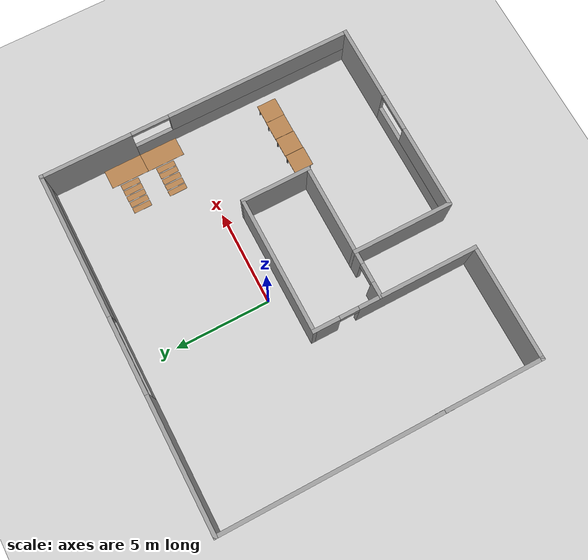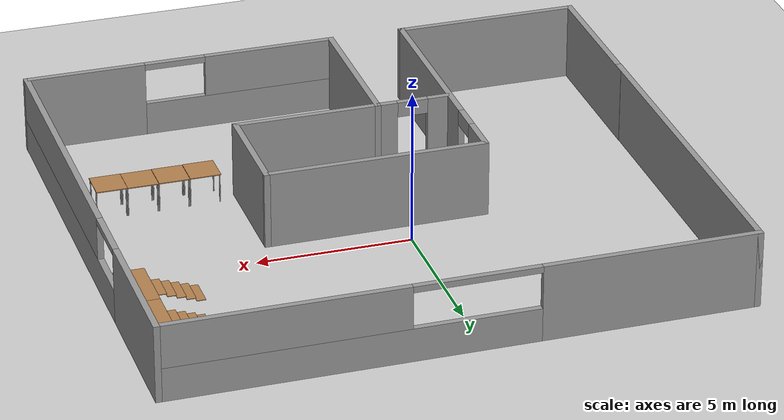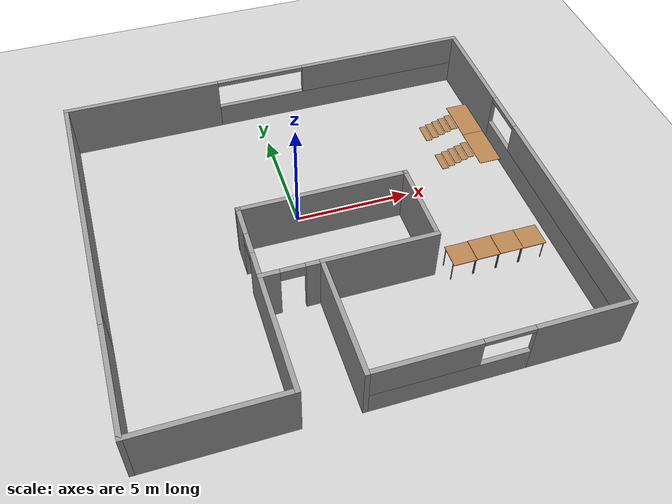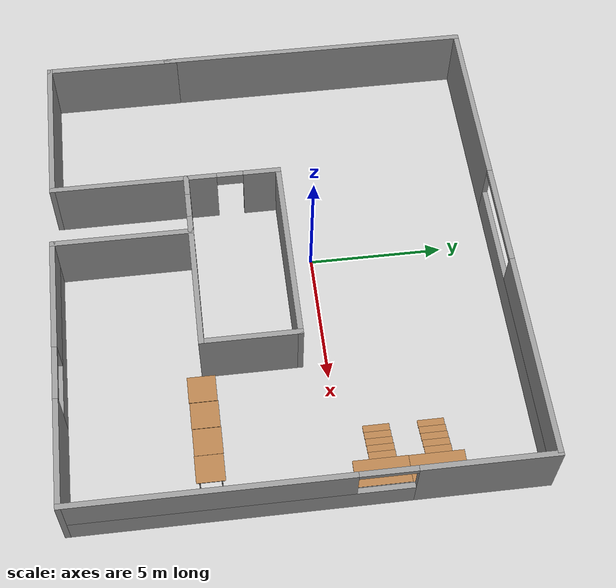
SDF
<sdf version="1.6">
 <world name="default">
  <light name="sun" type="directional">
   <pose>0 0 10 0 -0 0</pose>
   <diffuse>0.8 0.8 0.8 1</diffuse>
   <specular>0.2 0.2 0.2 1</specular>
   <attenuation>
    <range>1000</range>
    <constant>0.9</constant>
    <linear>0.01</linear>
    <quadratic>0.001</quadratic>
   </attenuation>
   <direction>-0.5 0.1 -0.9</direction>
  </light>
  <model name="ground_plane">
   <static>1</static>
   <link name="link">
    <collision name="collision">
     <geometry><plane><normal>0 0 1</normal><size>100 100</size></plane></geometry>
     <surface>
      <contact><collide_bitmask>65535</collide_bitmask></contact>
      <friction><ode><mu>100</mu><mu2>50</mu2></ode></friction>
     </surface>
    </collision>
    <visual name="visual">
     <cast_shadows>0</cast_shadows>
     <geometry><plane><normal>0 0 1</normal><size>100 100</size></plane></geometry>
     <material>
      <script><uri>file://media/materials/scripts/gazebo.material</uri><name>Gazebo/Grey</name></script>
     </material>
    </visual>
   </link>
  </model>
  <gravity>0 0 -9.8</gravity>
  <magnetic_field>6e-06 2.3e-05 -4.2e-05</magnetic_field>
  <atmosphere type="adiabatic"/>
  <physics name="default_physics" default="0" type="ode">
   <max_step_size>0.001</max_step_size>
   <real_time_factor>1</real_time_factor>
   <real_time_update_rate>1000</real_time_update_rate>
  </physics>
  <scene><ambient>0.4 0.4 0.4 1</ambient><background>0.7 0.7 0.7 1</background><shadows>1</shadows></scene>
  <audio><device>default</device></audio>
  <spherical_coordinates>
   <surface_model>EARTH_WGS84</surface_model>
   <latitude_deg>0</latitude_deg>
   <longitude_deg>0</longitude_deg>
   <elevation>0</elevation>
   <heading_deg>0</heading_deg>
  </spherical_coordinates>
  <model name="walls">
   <link name="Wall_0">
    <collision name="Wall_0_Collision">
     <geometry><box><size>11.9993 0.2 2.5</size></box></geometry>
     <pose>0 0 1.25 0 -0 0</pose>
    </collision>
    <visual name="Wall_0_Visual">
     <pose>0 0 1.25 0 -0 0</pose>
     <geometry><box><size>11.9993 0.2 2.5</size></box></geometry>
     <material>
      <script><uri>file://media/materials/scripts/gazebo.material</uri><name>Gazebo/Grey</name></script>
     </material>
    </visual>
    <velocity_decay><linear>0</linear><angular>0</angular></velocity_decay>
    <pose>-3.37 1.79965 0 0 -0 1.5708</pose>
   </link>
   <link name="Wall_1">
    <pose>5.88001 7.6993 0 0 -0 0</pose>
    <visual name="Wall_1_Visual_0">
     <pose>-5.88207 0 1.25 0 -0 0</pose>
     <geometry><box><size>6.93586 0.2 2.5</size></box></geometry>
     <material>
      <script><uri>file://media/materials/scripts/gazebo.material</uri><name>Gazebo/Grey</name></script>
     </material>
    </visual>
    <collision name="Wall_1_Collision_0">
     <geometry><box><size>6.93586 0.2 2.5</size></box></geometry>
     <pose>-5.88207 0 1.25 0 -0 0</pose>
    </collision>
    <visual name="Wall_1_Visual_1">
     <pose>3.46793 0 0.55 0 -0 0</pose>
     <geometry><box><size>11.7641 0.2 1.1</size></box></geometry>
     <material>
      <script><uri>file://media/materials/scripts/gazebo.material</uri><name>Gazebo/Grey</name></script>
     </material>
    </visual>
    <collision name="Wall_1_Collision_1">
     <geometry><box><size>11.7641 0.2 1.1</size></box></geometry>
     <pose>3.46793 0 0.55 0 -0 0</pose>
    </collision>
    <visual name="Wall_1_Visual_2">
     <pose>5.46793 0 1.8 0 -0 0</pose>
     <geometry><box><size>7.76414 0.2 1.4</size></box></geometry>
     <material>
      <script><uri>file://media/materials/scripts/gazebo.material</uri><name>Gazebo/Grey</name></script>
     </material>
    </visual>
    <collision name="Wall_1_Collision_2">
     <geometry><box><size>7.76414 0.2 1.4</size></box></geometry>
     <pose>5.46793 0 1.8 0 -0 0</pose>
    </collision>
    <visual name="Wall_1_Visual_3">
     <pose>-0.414141 0 2.4 0 -0 0</pose>
     <geometry><box><size>4 0.2 0.2</size></box></geometry>
     <material>
      <script><uri>file://media/materials/scripts/gazebo.material</uri><name>Gazebo/Grey</name></script>
     </material>
    </visual>
    <collision name="Wall_1_Collision_3">
     <geometry><box><size>4 0.2 0.2</size></box></geometry>
     <pose>-0.414141 0 2.4 0 -0 0</pose>
    </collision>
    <velocity_decay><linear>0</linear><angular>0</angular></velocity_decay>
   </link>
   <link name="Wall_10">
    <collision name="Wall_10_Collision">
     <geometry><box><size>5.17806 0.2 2.5</size></box></geometry>
     <pose>0 0 1.25 0 -0 0</pose>
    </collision>
    <visual name="Wall_10_Visual">
     <pose>0 0 1.25 0 -0 0</pose>
     <geometry><box><size>5.17806 0.2 2.5</size></box></geometry>
     <material>
      <script><uri>file://media/materials/scripts/gazebo.material</uri><name>Gazebo/Grey</name></script>
     </material>
    </visual>
    <velocity_decay><linear>0</linear><angular>0</angular></velocity_decay>
    <pose>-3.36336 -6.28114 0 0 -0 1.5708</pose>
   </link>
   <link name="Wall_12">
    <pose>3.70438 -3.74874 0 0 -0 3.14159</pose>
    <visual name="Wall_12_Visual_0">
     <pose>-0.931117 0 1.25 0 -0 0</pose>
     <geometry><box><size>0.700965 0.2 2.5</size></box></geometry>
     <material>
      <script><uri>file://media/materials/scripts/gazebo.material</uri><name>Gazebo/Grey</name></script>
     </material>
    </visual>
    <collision name="Wall_12_Collision_0">
     <geometry><box><size>0.700965 0.2 2.5</size></box></geometry>
     <pose>-0.931117 0 1.25 0 -0 0</pose>
    </collision>
    <visual name="Wall_12_Visual_1">
     <pose>0.850483 0 1.25 0 -0 0</pose>
     <geometry><box><size>0.862235 0.2 2.5</size></box></geometry>
     <material>
      <script><uri>file://media/materials/scripts/gazebo.material</uri><name>Gazebo/Grey</name></script>
     </material>
    </visual>
    <collision name="Wall_12_Collision_1">
     <geometry><box><size>0.862235 0.2 2.5</size></box></geometry>
     <pose>0.850483 0 1.25 0 -0 0</pose>
    </collision>
    <visual name="Wall_12_Visual_2">
     <pose>-0.080635 0 2.25 0 -0 0</pose>
     <geometry><box><size>1 0.2 0.5</size></box></geometry>
     <material>
      <script><uri>file://media/materials/scripts/gazebo.material</uri><name>Gazebo/Grey</name></script>
     </material>
    </visual>
    <collision name="Wall_12_Collision_2">
     <geometry><box><size>1 0.2 0.5</size></box></geometry>
     <pose>-0.080635 0 2.25 0 -0 0</pose>
    </collision>
    <velocity_decay><linear>0</linear><angular>0</angular></velocity_decay>
   </link>
   <link name="Wall_2">
    <pose>15.13 -0.5587 0 0 0 -1.5708</pose>
    <visual name="Wall_2_Visual_0">
     <pose>-5.9463 0 1.25 0 -0 0</pose>
     <geometry><box><size>4.82341 0.2 2.5</size></box></geometry>
     <material>
      <script><uri>file://media/materials/scripts/gazebo.material</uri><name>Gazebo/Grey</name></script>
     </material>
    </visual>
    <collision name="Wall_2_Collision_0">
     <geometry><box><size>4.82341 0.2 2.5</size></box></geometry>
     <pose>-5.9463 0 1.25 0 -0 0</pose>
    </collision>
    <visual name="Wall_2_Visual_1">
     <pose>2.4117 0 0.55 0 -0 0</pose>
     <geometry><box><size>11.8926 0.2 1.1</size></box></geometry>
     <material>
      <script><uri>file://media/materials/scripts/gazebo.material</uri><name>Gazebo/Grey</name></script>
     </material>
    </visual>
    <collision name="Wall_2_Collision_1">
     <geometry><box><size>11.8926 0.2 1.1</size></box></geometry>
     <pose>2.4117 0 0.55 0 -0 0</pose>
    </collision>
    <visual name="Wall_2_Visual_2">
     <pose>3.4117 0 1.8 0 -0 0</pose>
     <geometry><box><size>9.89259 0.2 1.4</size></box></geometry>
     <material>
      <script><uri>file://media/materials/scripts/gazebo.material</uri><name>Gazebo/Grey</name></script>
     </material>
    </visual>
    <collision name="Wall_2_Collision_2">
     <geometry><box><size>9.89259 0.2 1.4</size></box></geometry>
     <pose>3.4117 0 1.8 0 -0 0</pose>
    </collision>
    <visual name="Wall_2_Visual_3">
     <pose>-2.53459 0 2.4 0 -0 0</pose>
     <geometry><box><size>2 0.2 0.2</size></box></geometry>
     <material>
      <script><uri>file://media/materials/scripts/gazebo.material</uri><name>Gazebo/Grey</name></script>
     </material>
    </visual>
    <collision name="Wall_2_Collision_3">
     <geometry><box><size>2 0.2 0.2</size></box></geometry>
     <pose>-2.53459 0 2.4 0 -0 0</pose>
    </collision>
    <velocity_decay><linear>0</linear><angular>0</angular></velocity_decay>
   </link>
   <link name="Wall_3">
    <pose>10.0357 -8.81669 0 0 -0 3.14159</pose>
    <visual name="Wall_3_Visual_0">
     <pose>-3.20033 0 1.25 0 -0 0</pose>
     <geometry><box><size>3.98803 0.2 2.5</size></box></geometry>
     <material>
      <script><uri>file://media/materials/scripts/gazebo.material</uri><name>Gazebo/Grey</name></script>
     </material>
    </visual>
    <collision name="Wall_3_Collision_0">
     <geometry><box><size>3.98803 0.2 2.5</size></box></geometry>
     <pose>-3.20033 0 1.25 0 -0 0</pose>
    </collision>
    <visual name="Wall_3_Visual_1">
     <pose>1.99402 0 0.55 0 -0 0</pose>
     <geometry><box><size>6.40067 0.2 1.1</size></box></geometry>
     <material>
      <script><uri>file://media/materials/scripts/gazebo.material</uri><name>Gazebo/Grey</name></script>
     </material>
    </visual>
    <collision name="Wall_3_Collision_1">
     <geometry><box><size>6.40067 0.2 1.1</size></box></geometry>
     <pose>1.99402 0 0.55 0 -0 0</pose>
    </collision>
    <visual name="Wall_3_Visual_2">
     <pose>2.99402 0 1.8 0 -0 0</pose>
     <geometry><box><size>4.40067 0.2 1.4</size></box></geometry>
     <material>
      <script><uri>file://media/materials/scripts/gazebo.material</uri><name>Gazebo/Grey</name></script>
     </material>
    </visual>
    <collision name="Wall_3_Collision_2">
     <geometry><box><size>4.40067 0.2 1.4</size></box></geometry>
     <pose>2.99402 0 1.8 0 -0 0</pose>
    </collision>
    <visual name="Wall_3_Visual_3">
     <pose>-0.206321 0 2.4 0 -0 0</pose>
     <geometry><box><size>2 0.2 0.2</size></box></geometry>
     <material>
      <script><uri>file://media/materials/scripts/gazebo.material</uri><name>Gazebo/Grey</name></script>
     </material>
    </visual>
    <collision name="Wall_3_Collision_3">
     <geometry><box><size>2 0.2 0.2</size></box></geometry>
     <pose>-0.206321 0 2.4 0 -0 0</pose>
    </collision>
    <velocity_decay><linear>0</linear><angular>0</angular></velocity_decay>
   </link>
   <link name="Wall_4">
    <collision name="Wall_4_Collision">
     <geometry><box><size>5.27111 0.2 2.5</size></box></geometry>
     <pose>0 0 1.25 0 -0 0</pose>
    </collision>
    <visual name="Wall_4_Visual">
     <pose>0 0 1.25 0 -0 0</pose>
     <geometry><box><size>5.27111 0.2 2.5</size></box></geometry>
     <material>
      <script><uri>file://media/materials/scripts/gazebo.material</uri><name>Gazebo/Grey</name></script>
     </material>
    </visual>
    <velocity_decay><linear>0</linear><angular>0</angular></velocity_decay>
    <pose>4.94129 -6.28114 0 0 -0 1.5708</pose>
   </link>
   <link name="Wall_5">
    <collision name="Wall_5_Collision">
     <geometry><box><size>4.85239 0.2 2.5</size></box></geometry>
     <pose>0 0 1.25 0 -0 0</pose>
    </collision>
    <visual name="Wall_5_Visual">
     <pose>0 0 1.25 0 -0 0</pose>
     <geometry><box><size>4.85239 0.2 2.5</size></box></geometry>
     <material>
      <script><uri>file://media/materials/scripts/gazebo.material</uri><name>Gazebo/Grey</name></script>
     </material>
    </visual>
    <velocity_decay><linear>0</linear><angular>0</angular></velocity_decay>
    <pose>7.26748 -3.74559 0 0 -0 0</pose>
   </link>
   <link name="Wall_6">
    <collision name="Wall_6_Collision">
     <geometry><box><size>3.68929 0.2 2.5</size></box></geometry>
     <pose>0 0 1.25 0 -0 0</pose>
    </collision>
    <visual name="Wall_6_Visual">
     <pose>0 0 1.25 0 -0 0</pose>
     <geometry><box><size>3.68929 0.2 2.5</size></box></geometry>
     <material>
      <script><uri>file://media/materials/scripts/gazebo.material</uri><name>Gazebo/Grey</name></script>
     </material>
    </visual>
    <velocity_decay><linear>0</linear><angular>0</angular></velocity_decay>
    <pose>9.59368 -2.00094 0 0 -0 1.5708</pose>
   </link>
   <link name="Wall_7">
    <collision name="Wall_7_Collision">
     <geometry><box><size>7.27163 0.2 2.5</size></box></geometry>
     <pose>0 0 1.25 0 -0 0</pose>
    </collision>
    <visual name="Wall_7_Visual">
     <pose>0 0 1.25 0 -0 0</pose>
     <geometry><box><size>7.27163 0.2 2.5</size></box></geometry>
     <material>
      <script><uri>file://media/materials/scripts/gazebo.material</uri><name>Gazebo/Grey</name></script>
     </material>
    </visual>
    <velocity_decay><linear>0</linear><angular>0</angular></velocity_decay>
    <pose>6.05786 -0.256295 0 0 -0 3.14159</pose>
   </link>
   <link name="Wall_8">
    <pose>2.52204 -4.51323 0 0 0 -1.5708</pose>
    <visual name="Wall_8_Visual_0">
     <pose>-3.63983 0 1.25 0 -0 0</pose>
     <geometry><box><size>1.43422 0.2 2.5</size></box></geometry>
     <material>
      <script><uri>file://media/materials/scripts/gazebo.material</uri><name>Gazebo/Grey</name></script>
     </material>
    </visual>
    <collision name="Wall_8_Collision_0">
     <geometry><box><size>1.43422 0.2 2.5</size></box></geometry>
     <pose>-3.63983 0 1.25 0 -0 0</pose>
    </collision>
    <visual name="Wall_8_Visual_1">
     <pose>1.21711 0 1.25 0 -0 0</pose>
     <geometry><box><size>6.27966 0.2 2.5</size></box></geometry>
     <material>
      <script><uri>file://media/materials/scripts/gazebo.material</uri><name>Gazebo/Grey</name></script>
     </material>
    </visual>
    <collision name="Wall_8_Collision_1">
     <geometry><box><size>6.27966 0.2 2.5</size></box></geometry>
     <pose>1.21711 0 1.25 0 -0 0</pose>
    </collision>
    <visual name="Wall_8_Visual_2">
     <pose>-2.42272 0 2.25 0 -0 0</pose>
     <geometry><box><size>1 0.2 0.5</size></box></geometry>
     <material>
      <script><uri>file://media/materials/scripts/gazebo.material</uri><name>Gazebo/Grey</name></script>
     </material>
    </visual>
    <collision name="Wall_8_Collision_2">
     <geometry><box><size>1 0.2 0.5</size></box></geometry>
     <pose>-2.42272 0 2.25 0 -0 0</pose>
    </collision>
    <velocity_decay><linear>0</linear><angular>0</angular></velocity_decay>
   </link>
   <link name="Wall_9">
    <collision name="Wall_9_Collision">
     <geometry><box><size>6.08541 0.2 2.5</size></box></geometry>
     <pose>0 0 1.25 0 -0 0</pose>
    </collision>
    <visual name="Wall_9_Visual">
     <pose>0 0 1.25 0 -0 0</pose>
     <geometry><box><size>6.08541 0.2 2.5</size></box></geometry>
     <material>
      <script><uri>file://media/materials/scripts/gazebo.material</uri><name>Gazebo/Grey</name></script>
     </material>
    </visual>
    <velocity_decay><linear>0</linear><angular>0</angular></velocity_decay>
    <pose>-0.420658 -8.77017 0 0 -0 3.14159</pose>
   </link>
   <static>1</static>
   <pose>-5.21974 -0.713673 0 0 -0 0</pose>
  </model>
  <model name="table_1m">
   <static>1</static>
   <link name="link">
    <collision name="surface">
     <pose>0 0 1.01 0 -0 0</pose>
     <geometry><box><size>1 1.01 0.03</size></box></geometry>
    </collision>
    <visual name="visual1">
     <pose>0 0 1.01 0 -0 0</pose>
     <geometry><box><size>1 1.01 0.03</size></box></geometry>
     <material>
      <script><uri>file://media/materials/scripts/gazebo.material</uri><name>Gazebo/Wood</name></script>
     </material>
    </visual>
    <collision name="front_left_leg">
     <pose>0.48 0.38 0.5005 0 -0 0</pose>
     <geometry><cylinder><radius>0.02</radius><length>1.01</length></cylinder></geometry>
    </collision>
    <visual name="front_left_leg">
     <pose>0.48 0.38 0.5005 0 -0 0</pose>
     <geometry><cylinder><radius>0.02</radius><length>1.01</length></cylinder></geometry>
     <material>
      <script><uri>file://media/materials/scripts/gazebo.material</uri><name>Gazebo/Grey</name></script>
     </material>
    </visual>
    <collision name="front_right_leg">
     <pose>0.48 -0.38 0.5005 0 -0 0</pose>
     <geometry><cylinder><radius>0.02</radius><length>1.01</length></cylinder></geometry>
    </collision>
    <visual name="front_right_leg">
     <pose>0.48 -0.38 0.5005 0 -0 0</pose>
     <geometry><cylinder><radius>0.02</radius><length>1.01</length></cylinder></geometry>
     <material>
      <script><uri>file://media/materials/scripts/gazebo.material</uri><name>Gazebo/Grey</name></script>
     </material>
    </visual>
    <collision name="back_right_leg">
     <pose>-0.48 -0.38 0.5005 0 -0 0</pose>
     <geometry><cylinder><radius>0.02</radius><length>1.01</length></cylinder></geometry>
    </collision>
    <visual name="back_right_leg">
     <pose>-0.48 -0.38 0.5005 0 -0 0</pose>
     <geometry><cylinder><radius>0.02</radius><length>1.01</length></cylinder></geometry>
     <material>
      <script><uri>file://media/materials/scripts/gazebo.material</uri><name>Gazebo/Grey</name></script>
     </material>
    </visual>
    <collision name="back_left_leg">
     <pose>-0.48 0.38 0.5005 0 -0 0</pose>
     <geometry><cylinder><radius>0.02</radius><length>1.01</length></cylinder></geometry>
    </collision>
    <visual name="back_left_leg">
     <pose>-0.48 0.38 0.5005 0 -0 0</pose>
     <geometry><cylinder><radius>0.02</radius><length>1.01</length></cylinder></geometry>
     <material>
      <script><uri>file://media/materials/scripts/gazebo.material</uri><name>Gazebo/Grey</name></script>
     </material>
    </visual>
    <velocity_decay><linear>0</linear><angular>0</angular></velocity_decay>
   </link>
   <pose>6.48778 -4.56718 0 0 -0 0</pose>
  </model>
  <model name="table_1m_0">
   <static>1</static>
   <link name="link">
    <collision name="surface">
     <pose>0 0 1.01 0 -0 0</pose>
     <geometry><box><size>1 1.01 0.03</size></box></geometry>
    </collision>
    <visual name="visual1">
     <pose>0 0 1.01 0 -0 0</pose>
     <geometry><box><size>1 1.01 0.03</size></box></geometry>
     <material>
      <script><uri>file://media/materials/scripts/gazebo.material</uri><name>Gazebo/Wood</name></script>
     </material>
    </visual>
    <collision name="front_left_leg">
     <pose>0.48 0.38 0.5005 0 -0 0</pose>
     <geometry><cylinder><radius>0.02</radius><length>1.01</length></cylinder></geometry>
    </collision>
    <visual name="front_left_leg">
     <pose>0.48 0.38 0.5005 0 -0 0</pose>
     <geometry><cylinder><radius>0.02</radius><length>1.01</length></cylinder></geometry>
     <material>
      <script><uri>file://media/materials/scripts/gazebo.material</uri><name>Gazebo/Grey</name></script>
     </material>
    </visual>
    <collision name="front_right_leg">
     <pose>0.48 -0.38 0.5005 0 -0 0</pose>
     <geometry><cylinder><radius>0.02</radius><length>1.01</length></cylinder></geometry>
    </collision>
    <visual name="front_right_leg">
     <pose>0.48 -0.38 0.5005 0 -0 0</pose>
     <geometry><cylinder><radius>0.02</radius><length>1.01</length></cylinder></geometry>
     <material>
      <script><uri>file://media/materials/scripts/gazebo.material</uri><name>Gazebo/Grey</name></script>
     </material>
    </visual>
    <collision name="back_right_leg">
     <pose>-0.48 -0.38 0.5005 0 -0 0</pose>
     <geometry><cylinder><radius>0.02</radius><length>1.01</length></cylinder></geometry>
    </collision>
    <visual name="back_right_leg">
     <pose>-0.48 -0.38 0.5005 0 -0 0</pose>
     <geometry><cylinder><radius>0.02</radius><length>1.01</length></cylinder></geometry>
     <material>
      <script><uri>file://media/materials/scripts/gazebo.material</uri><name>Gazebo/Grey</name></script>
     </material>
    </visual>
    <collision name="back_left_leg">
     <pose>-0.48 0.38 0.5005 0 -0 0</pose>
     <geometry><cylinder><radius>0.02</radius><length>1.01</length></cylinder></geometry>
    </collision>
    <visual name="back_left_leg">
     <pose>-0.48 0.38 0.5005 0 -0 0</pose>
     <geometry><cylinder><radius>0.02</radius><length>1.01</length></cylinder></geometry>
     <material>
      <script><uri>file://media/materials/scripts/gazebo.material</uri><name>Gazebo/Grey</name></script>
     </material>
    </visual>
    <velocity_decay><linear>0</linear><angular>0</angular></velocity_decay>
   </link>
   <pose>5.47593 -4.58582 0 0 -0 0</pose>
  </model>
  <model name="table_1m_1">
   <static>1</static>
   <link name="link">
    <collision name="surface">
     <pose>0 0 1.01 0 -0 0</pose>
     <geometry><box><size>1 1.01 0.03</size></box></geometry>
    </collision>
    <visual name="visual1">
     <pose>0 0 1.01 0 -0 0</pose>
     <geometry><box><size>1 1.01 0.03</size></box></geometry>
     <material>
      <script><uri>file://media/materials/scripts/gazebo.material</uri><name>Gazebo/Wood</name></script>
     </material>
    </visual>
    <collision name="front_left_leg">
     <pose>0.48 0.38 0.5005 0 -0 0</pose>
     <geometry><cylinder><radius>0.02</radius><length>1.01</length></cylinder></geometry>
    </collision>
    <visual name="front_left_leg">
     <pose>0.48 0.38 0.5005 0 -0 0</pose>
     <geometry><cylinder><radius>0.02</radius><length>1.01</length></cylinder></geometry>
     <material>
      <script><uri>file://media/materials/scripts/gazebo.material</uri><name>Gazebo/Grey</name></script>
     </material>
    </visual>
    <collision name="front_right_leg">
     <pose>0.48 -0.38 0.5005 0 -0 0</pose>
     <geometry><cylinder><radius>0.02</radius><length>1.01</length></cylinder></geometry>
    </collision>
    <visual name="front_right_leg">
     <pose>0.48 -0.38 0.5005 0 -0 0</pose>
     <geometry><cylinder><radius>0.02</radius><length>1.01</length></cylinder></geometry>
     <material>
      <script><uri>file://media/materials/scripts/gazebo.material</uri><name>Gazebo/Grey</name></script>
     </material>
    </visual>
    <collision name="back_right_leg">
     <pose>-0.48 -0.38 0.5005 0 -0 0</pose>
     <geometry><cylinder><radius>0.02</radius><length>1.01</length></cylinder></geometry>
    </collision>
    <visual name="back_right_leg">
     <pose>-0.48 -0.38 0.5005 0 -0 0</pose>
     <geometry><cylinder><radius>0.02</radius><length>1.01</length></cylinder></geometry>
     <material>
      <script><uri>file://media/materials/scripts/gazebo.material</uri><name>Gazebo/Grey</name></script>
     </material>
    </visual>
    <collision name="back_left_leg">
     <pose>-0.48 0.38 0.5005 0 -0 0</pose>
     <geometry><cylinder><radius>0.02</radius><length>1.01</length></cylinder></geometry>
    </collision>
    <visual name="back_left_leg">
     <pose>-0.48 0.38 0.5005 0 -0 0</pose>
     <geometry><cylinder><radius>0.02</radius><length>1.01</length></cylinder></geometry>
     <material>
      <script><uri>file://media/materials/scripts/gazebo.material</uri><name>Gazebo/Grey</name></script>
     </material>
    </visual>
    <velocity_decay><linear>0</linear><angular>0</angular></velocity_decay>
   </link>
   <pose>7.49779 -4.55687 0 0 -0 0</pose>
  </model>
  <model name="bauzil_stairs">
   <static>1</static>
   <link name="step_1">
    <collision name="step_1">
     <pose>2.01 -0.059996 0.59 0 -0 0</pose>
     <geometry><box><size>0.982111 1.96422 0.02</size></box></geometry>
    </collision>
    <visual name="step_1">
     <pose>2.01 -0.059996 0.59 0 -0 0</pose>
     <geometry><box><size>0.982111 1.96422 0.02</size></box></geometry>
     <material>
      <script><uri>file://media/materials/scripts/gazebo.material</uri><name>Gazebo/Wood</name></script>
     </material>
    </visual>
   </link>
   <link name="step_2">
    <collision name="step_2">
     <pose>1.36 0.040004 0.49 0 -0 0</pose>
     <geometry><box><size>0.288506 0.961687 0.02</size></box></geometry>
    </collision>
    <visual name="step_2">
     <pose>1.36 0.040004 0.49 0 -0 0</pose>
     <geometry><box><size>0.288506 0.961687 0.02</size></box></geometry>
     <material>
      <script><uri>file://media/materials/scripts/gazebo.material</uri><name>Gazebo/Wood</name></script>
     </material>
    </visual>
   </link>
   <link name="step_3">
    <collision name="step_3">
     <pose>1.06 0.040004 0.39 0 -0 0</pose>
     <geometry><box><size>0.288506 0.961687 0.02</size></box></geometry>
    </collision>
    <visual name="step_3">
     <pose>1.06 0.040004 0.39 0 -0 0</pose>
     <geometry><box><size>0.288506 0.961687 0.02</size></box></geometry>
     <material>
      <script><uri>file://media/materials/scripts/gazebo.material</uri><name>Gazebo/Wood</name></script>
     </material>
    </visual>
   </link>
   <link name="step_4">
    <collision name="step_4">
     <pose>0.76 0.040004 0.29 0 -0 0</pose>
     <geometry><box><size>0.288506 0.961687 0.02</size></box></geometry>
    </collision>
    <visual name="step_4">
     <pose>0.76 0.040004 0.29 0 -0 0</pose>
     <geometry><box><size>0.288506 0.961687 0.02</size></box></geometry>
     <material>
      <script><uri>file://media/materials/scripts/gazebo.material</uri><name>Gazebo/Wood</name></script>
     </material>
    </visual>
   </link>
   <link name="step_5">
    <collision name="step_5">
     <pose>0.46 0.040004 0.19 0 -0 0</pose>
     <geometry><box><size>0.288506 0.961687 0.02</size></box></geometry>
    </collision>
    <visual name="step_5">
     <pose>0.46 0.040004 0.19 0 -0 0</pose>
     <geometry><box><size>0.288506 0.961687 0.02</size></box></geometry>
     <material>
      <script><uri>file://media/materials/scripts/gazebo.material</uri><name>Gazebo/Wood</name></script>
     </material>
    </visual>
   </link>
   <link name="step_6">
    <collision name="step_6">
     <pose>0.16 0.040004 0.09 0 -0 0</pose>
     <geometry><box><size>0.288506 0.961687 0.02</size></box></geometry>
    </collision>
    <visual name="step_6">
     <pose>0.16 0.040004 0.09 0 -0 0</pose>
     <geometry><box><size>0.288506 0.961687 0.02</size></box></geometry>
     <material>
      <script><uri>file://media/materials/scripts/gazebo.material</uri><name>Gazebo/Wood</name></script>
     </material>
    </visual>
   </link>
   <pose>7.08182 1.3544 0 0 -0 0</pose>
  </model>
  <model name="bauzil_stairs_0">
   <static>1</static>
   <link name="step_1">
    <collision name="step_1">
     <pose>2.01 -0.059996 0.59 0 -0 0</pose>
     <geometry><box><size>0.982111 1.96422 0.02</size></box></geometry>
    </collision>
    <visual name="step_1">
     <pose>2.01 -0.059996 0.59 0 -0 0</pose>
     <geometry><box><size>0.982111 1.96422 0.02</size></box></geometry>
     <material>
      <script><uri>file://media/materials/scripts/gazebo.material</uri><name>Gazebo/Wood</name></script>
     </material>
    </visual>
   </link>
   <link name="step_2">
    <collision name="step_2">
     <pose>1.36 0.040004 0.49 0 -0 0</pose>
     <geometry><box><size>0.288506 0.961687 0.02</size></box></geometry>
    </collision>
    <visual name="step_2">
     <pose>1.36 0.040004 0.49 0 -0 0</pose>
     <geometry><box><size>0.288506 0.961687 0.02</size></box></geometry>
     <material>
      <script><uri>file://media/materials/scripts/gazebo.material</uri><name>Gazebo/Wood</name></script>
     </material>
    </visual>
   </link>
   <link name="step_3">
    <collision name="step_3">
     <pose>1.06 0.040004 0.39 0 -0 0</pose>
     <geometry><box><size>0.288506 0.961687 0.02</size></box></geometry>
    </collision>
    <visual name="step_3">
     <pose>1.06 0.040004 0.39 0 -0 0</pose>
     <geometry><box><size>0.288506 0.961687 0.02</size></box></geometry>
     <material>
      <script><uri>file://media/materials/scripts/gazebo.material</uri><name>Gazebo/Wood</name></script>
     </material>
    </visual>
   </link>
   <link name="step_4">
    <collision name="step_4">
     <pose>0.76 0.040004 0.29 0 -0 0</pose>
     <geometry><box><size>0.288506 0.961687 0.02</size></box></geometry>
    </collision>
    <visual name="step_4">
     <pose>0.76 0.040004 0.29 0 -0 0</pose>
     <geometry><box><size>0.288506 0.961687 0.02</size></box></geometry>
     <material>
      <script><uri>file://media/materials/scripts/gazebo.material</uri><name>Gazebo/Wood</name></script>
     </material>
    </visual>
   </link>
   <link name="step_5">
    <collision name="step_5">
     <pose>0.46 0.040004 0.19 0 -0 0</pose>
     <geometry><box><size>0.288506 0.961687 0.02</size></box></geometry>
    </collision>
    <visual name="step_5">
     <pose>0.46 0.040004 0.19 0 -0 0</pose>
     <geometry><box><size>0.288506 0.961687 0.02</size></box></geometry>
     <material>
      <script><uri>file://media/materials/scripts/gazebo.material</uri><name>Gazebo/Wood</name></script>
     </material>
    </visual>
   </link>
   <link name="step_6">
    <collision name="step_6">
     <pose>0.16 0.040004 0.09 0 -0 0</pose>
     <geometry><box><size>0.288506 0.961687 0.02</size></box></geometry>
    </collision>
    <visual name="step_6">
     <pose>0.16 0.040004 0.09 0 -0 0</pose>
     <geometry><box><size>0.288506 0.961687 0.02</size></box></geometry>
     <material>
      <script><uri>file://media/materials/scripts/gazebo.material</uri><name>Gazebo/Wood</name></script>
     </material>
    </visual>
   </link>
   <pose>7.08932 3.31501 0 0 -0 0</pose>
  </model>
  <model name="table_1m_2">
   <static>1</static>
   <link name="link">
    <collision name="surface">
     <pose>0 0 1.01 0 -0 0</pose>
     <geometry><box><size>1 1.01 0.03</size></box></geometry>
    </collision>
    <visual name="visual1">
     <pose>0 0 1.01 0 -0 0</pose>
     <geometry><box><size>1 1.01 0.03</size></box></geometry>
     <material>
      <script><uri>file://media/materials/scripts/gazebo.material</uri><name>Gazebo/Wood</name></script>
     </material>
    </visual>
    <collision name="front_left_leg">
     <pose>0.48 0.38 0.5005 0 -0 0</pose>
     <geometry><cylinder><radius>0.02</radius><length>1.01</length></cylinder></geometry>
    </collision>
    <visual name="front_left_leg">
     <pose>0.48 0.38 0.5005 0 -0 0</pose>
     <geometry><cylinder><radius>0.02</radius><length>1.01</length></cylinder></geometry>
     <material>
      <script><uri>file://media/materials/scripts/gazebo.material</uri><name>Gazebo/Grey</name></script>
     </material>
    </visual>
    <collision name="front_right_leg">
     <pose>0.48 -0.38 0.5005 0 -0 0</pose>
     <geometry><cylinder><radius>0.02</radius><length>1.01</length></cylinder></geometry>
    </collision>
    <visual name="front_right_leg">
     <pose>0.48 -0.38 0.5005 0 -0 0</pose>
     <geometry><cylinder><radius>0.02</radius><length>1.01</length></cylinder></geometry>
     <material>
      <script><uri>file://media/materials/scripts/gazebo.material</uri><name>Gazebo/Grey</name></script>
     </material>
    </visual>
    <collision name="back_right_leg">
     <pose>-0.48 -0.38 0.5005 0 -0 0</pose>
     <geometry><cylinder><radius>0.02</radius><length>1.01</length></cylinder></geometry>
    </collision>
    <visual name="back_right_leg">
     <pose>-0.48 -0.38 0.5005 0 -0 0</pose>
     <geometry><cylinder><radius>0.02</radius><length>1.01</length></cylinder></geometry>
     <material>
      <script><uri>file://media/materials/scripts/gazebo.material</uri><name>Gazebo/Grey</name></script>
     </material>
    </visual>
    <collision name="back_left_leg">
     <pose>-0.48 0.38 0.5005 0 -0 0</pose>
     <geometry><cylinder><radius>0.02</radius><length>1.01</length></cylinder></geometry>
    </collision>
    <visual name="back_left_leg">
     <pose>-0.48 0.38 0.5005 0 -0 0</pose>
     <geometry><cylinder><radius>0.02</radius><length>1.01</length></cylinder></geometry>
     <material>
      <script><uri>file://media/materials/scripts/gazebo.material</uri><name>Gazebo/Grey</name></script>
     </material>
    </visual>
    <velocity_decay><linear>0</linear><angular>0</angular></velocity_decay>
   </link>
   <pose>8.50074 -4.56585 0 0 -0 0</pose>
  </model>
 </world>
</sdf>
